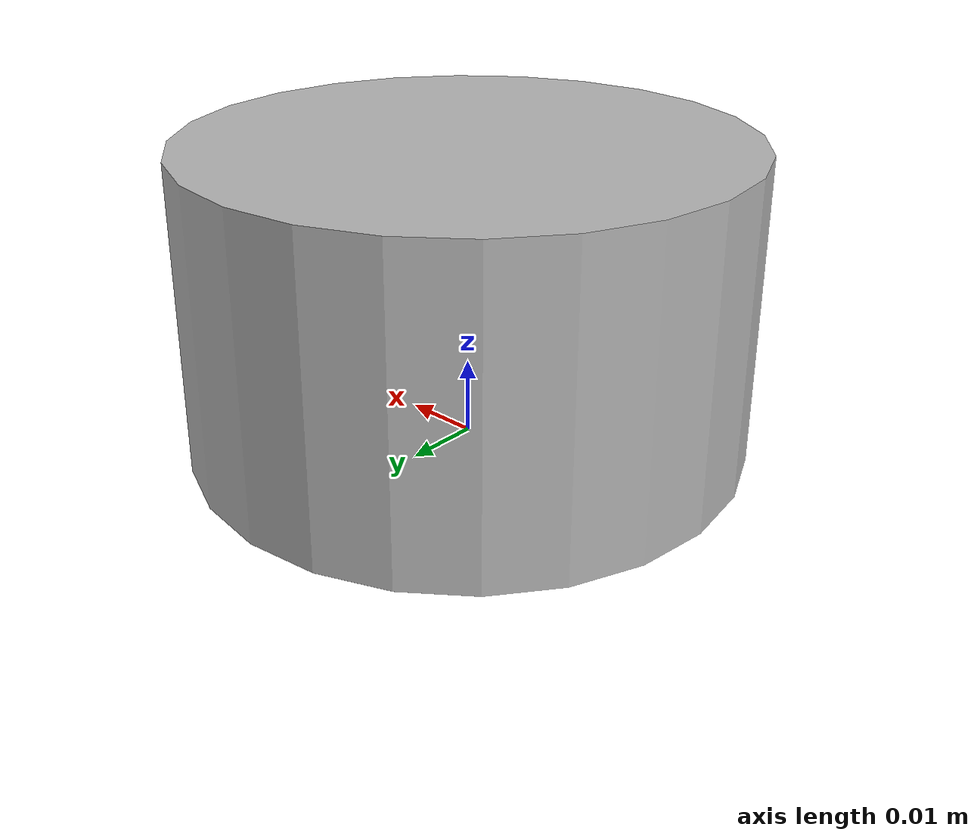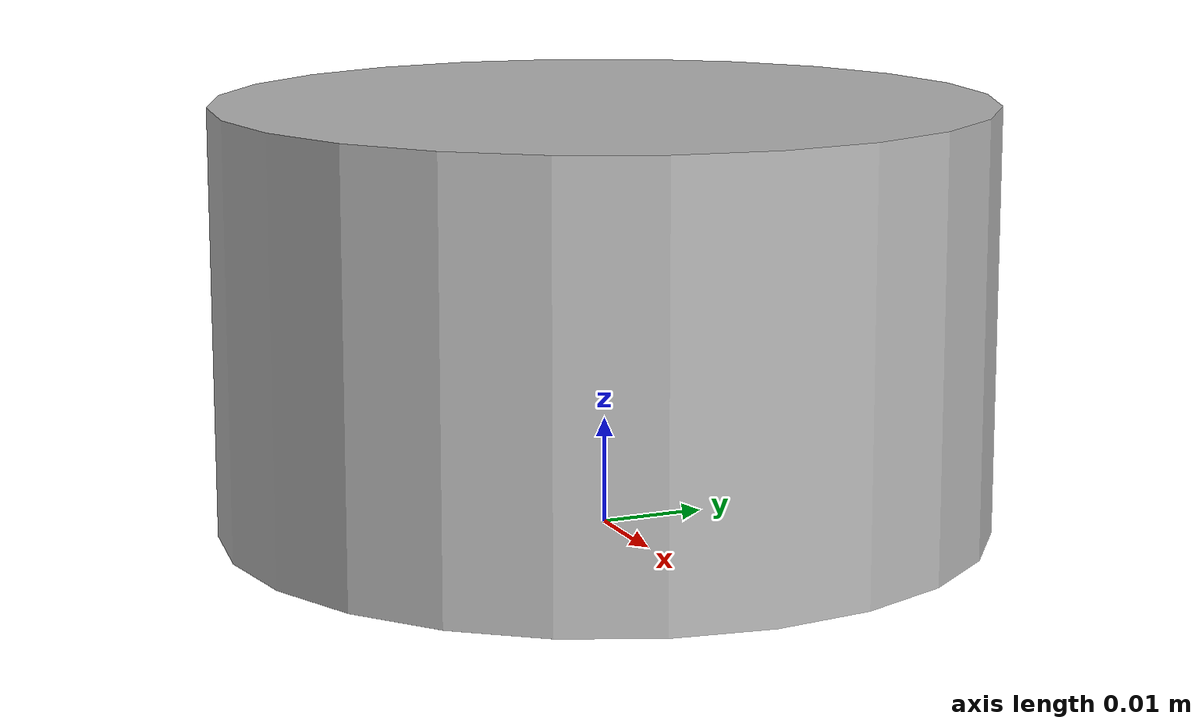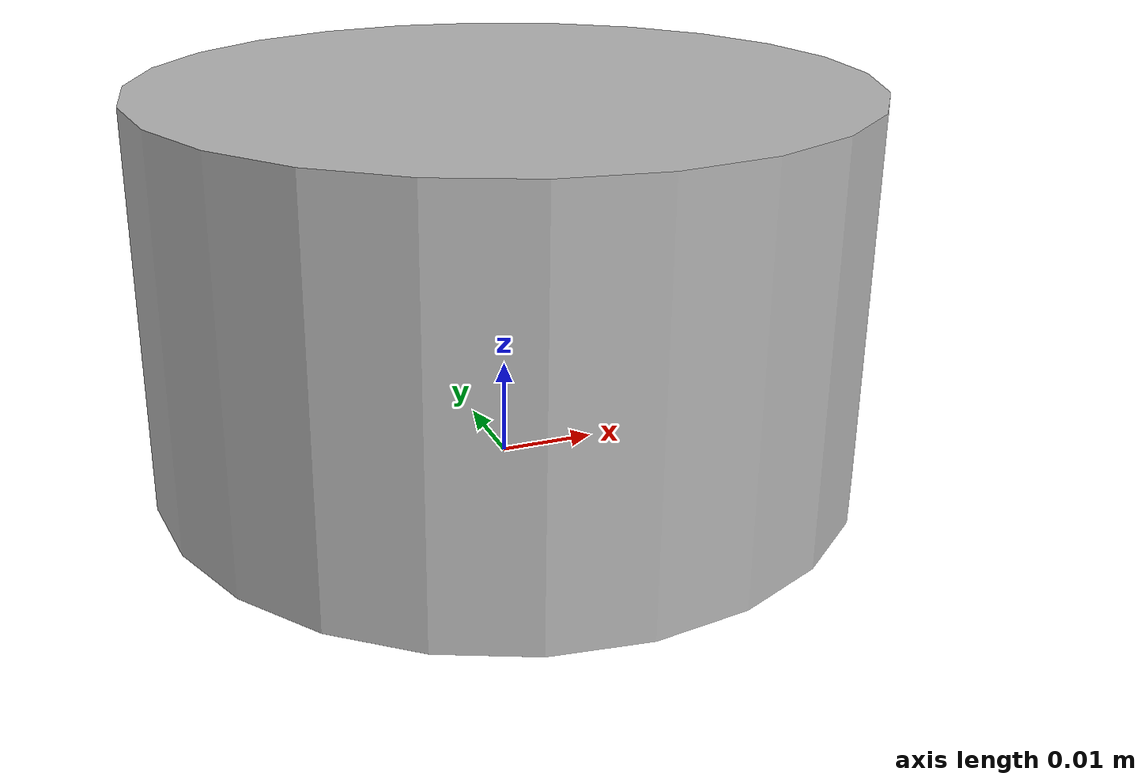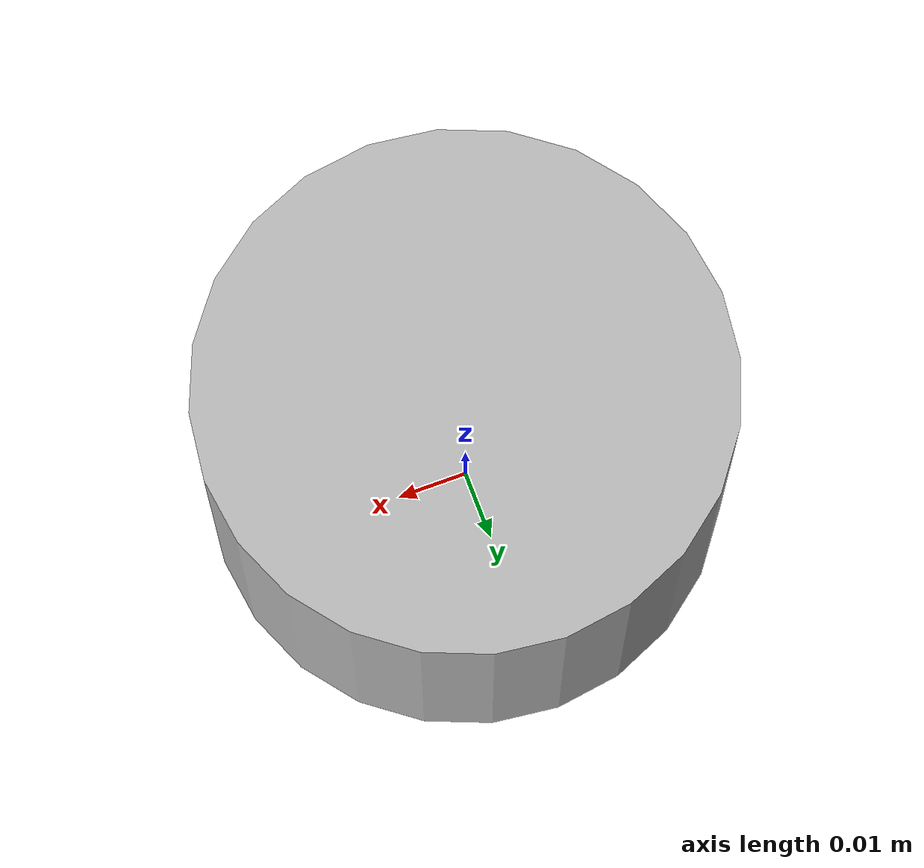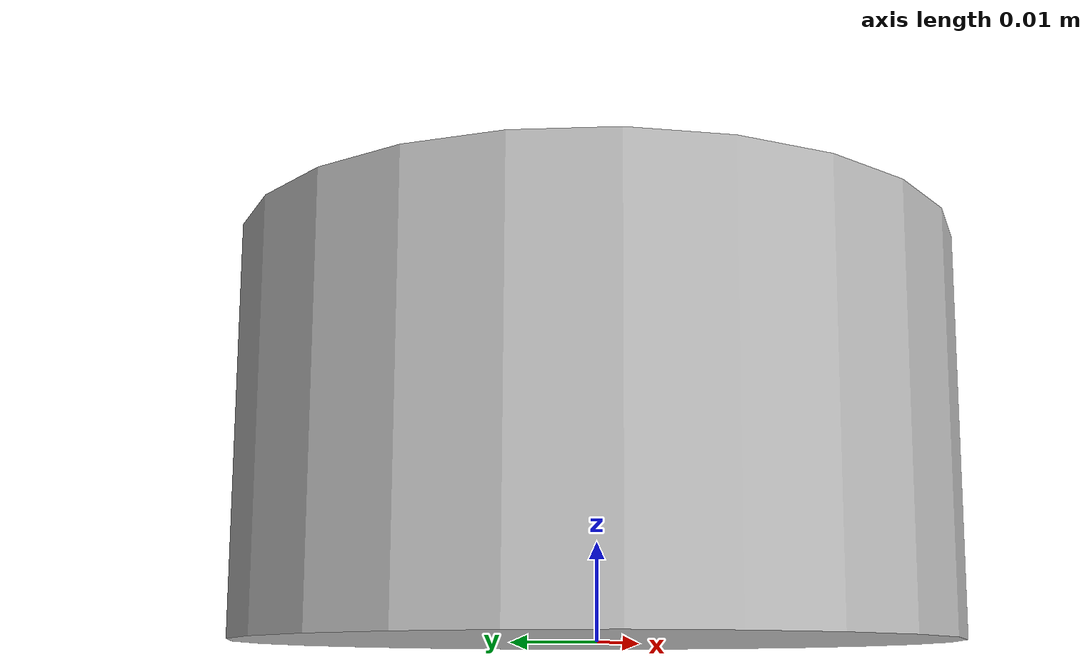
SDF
<?xml version='1.0'?>
<sdf version="1.6">
<model name="lidar">
	<static>true</static>
	<link name="lidar_link">
		<pose>0 0 0.02 0 0 0</pose>
      	<collision name="base_collision">
			<geometry>
				<cylinder>
					<radius>0.036285</radius>
					<length>0.04</length>
				</cylinder>
			</geometry>
      	</collision>

		<visual name="base_visual">
			<geometry>
				<cylinder>
					<radius>0.036285</radius>
					<length>0.04</length>
				</cylinder>
			</geometry>
		</visual>

		<sensor type="ray" name="sensor">
			<pose>0 0 -0.004645 0 0 0</pose>
			<visualize>true</visualize>
			<update_rate>10</update_rate>
			<ray>
				<scan>
					<horizontal>
						<samples>360</samples>
						<resolution>1</resolution>
						<min_angle>-3.141592</min_angle>
						<max_angle>3.141592</max_angle>
					</horizontal>
					<vertical>
						<samples>1</samples>
						<resolution>1</resolution>
						<min_angle>0</min_angle>
						<max_angle>-0.1</max_angle>
					</vertical>
				</scan>
				<range>
					<min>0.2</min>
					<max>18</max>
					<resolution>0.02</resolution>
				</range>
			</ray>
			<plugin name="lidar_control" filename="libsim_lidar_plugin.so">
        <lidardatatopicName>/sensor/lidar</lidardatatopicName>
				<topicName>/sensor/lidar/scan</topicName>
				<frameName>laser</frameName>
			</plugin>
		</sensor>
	</link>
</model>
</sdf>
